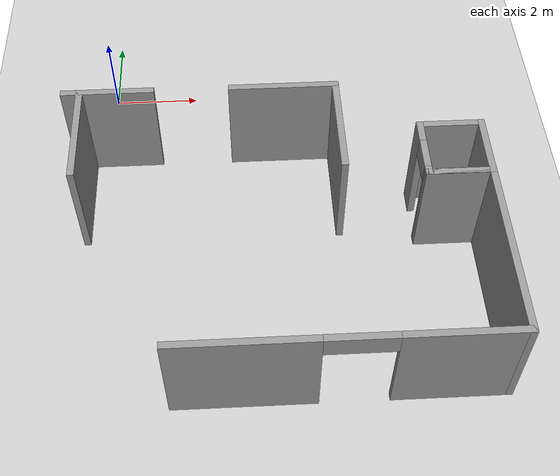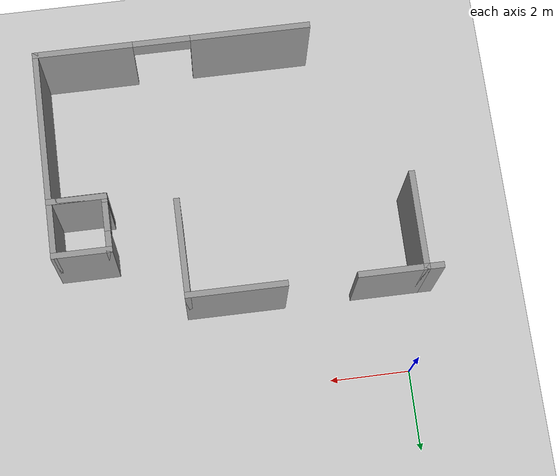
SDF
<sdf version="1.9">
 <world name="default">
  <model name="ground_plane">
   <static>true</static>
   <link name="link">
    <collision name="collision">
     <geometry><plane><normal>0 0 1</normal><size>100 100</size></plane></geometry>
     <surface><friction><ode><mu>100</mu><mu2>50</mu2></ode></friction></surface>
    </collision>
    <visual name="visual">
     <cast_shadows>false</cast_shadows>
     <geometry><plane><normal>0 0 1</normal><size>100 100</size></plane></geometry>
     <material>
      <script><uri>file://media/materials/scripts/gazebo.material</uri><name>Gazebo/Grey</name></script>
     </material>
    </visual>
   </link>
  </model>
  <model name="cma_parede_t">
   <pose>0.16403899999999999 -3.2482899999999999 0 0 0 0</pose>
   <link name="Wall_15">
    <collision name="Wall_15_Collision">
     <geometry><box><size>2.5 0.14999999999999999 2.5</size></box></geometry>
     <pose>0 0 1.25 0 0 0</pose>
    </collision>
    <visual name="Wall_15_Visual">
     <pose>0 0 1.25 0 0 0</pose>
     <geometry><box><size>2.5 0.14999999999999999 2.5</size></box></geometry>
     <material>
      <script><uri>file://media/materials/scripts/gazebo.material</uri><name>Gazebo/Grey</name></script>
      <ambient>1 1 1 1</ambient>
     </material>
    </visual>
    <pose>-0.625 0 0 0 0 1.5708</pose>
   </link>
   <link name="Wall_16">
    <collision name="Wall_16_Collision">
     <geometry><box><size>0.5 0.14999999999999999 2.5</size></box></geometry>
     <pose>0 0 1.25 0 0 0</pose>
    </collision>
    <visual name="Wall_16_Visual">
     <pose>0 0 1.25 0 0 0</pose>
     <geometry><box><size>0.5 0.14999999999999999 2.5</size></box></geometry>
     <material>
      <script><uri>file://media/materials/scripts/gazebo.material</uri><name>Gazebo/Grey</name></script>
      <ambient>1 1 1 1</ambient>
     </material>
    </visual>
    <pose>-0.80000000000000004 1.175 0 0 0 3.1415899999999999</pose>
   </link>
   <link name="Wall_18">
    <collision name="Wall_18_Collision">
     <geometry><box><size>1.75 0.14999999999999999 2.5</size></box></geometry>
     <pose>0 0 1.25 0 0 0</pose>
    </collision>
    <visual name="Wall_18_Visual">
     <pose>0 0 1.25 0 0 0</pose>
     <geometry><box><size>1.75 0.14999999999999999 2.5</size></box></geometry>
     <material>
      <script><uri>file://media/materials/scripts/gazebo.material</uri><name>Gazebo/Grey</name></script>
      <ambient>1 1 1 1</ambient>
     </material>
    </visual>
    <pose>0.17499999999999999 1.175 0 0 0 0</pose>
   </link>
   <static>true</static>
  </model>
  <model name="cma_parede_L">
   <pose>4.97628 -6.6999199999999997 0 0 0 0</pose>
   <link name="Wall_0">
    <pose>0 -1.925 0 0 0 0</pose>
    <visual name="Wall_0_Visual_0">
     <pose>-1.9850000000000001 0 1.25 0 0 0</pose>
     <geometry><box><size>3.0299999999999998 0.14999999999999999 2.5</size></box></geometry>
     <material>
      <script><uri>file://media/materials/scripts/gazebo.material</uri><name>Gazebo/Grey</name></script>
      <ambient>1 1 1 1</ambient>
     </material>
    </visual>
    <collision name="Wall_0_Collision_0">
     <geometry><box><size>3.0299999999999998 0.14999999999999999 2.5</size></box></geometry>
     <pose>-1.9850000000000001 0 1.25 0 0 0</pose>
    </collision>
    <visual name="Wall_0_Visual_1">
     <pose>2.2400000000000002 0 1.25 0 0 0</pose>
     <geometry><box><size>2.52 0.14999999999999999 2.5</size></box></geometry>
     <material>
      <script><uri>file://media/materials/scripts/gazebo.material</uri><name>Gazebo/Grey</name></script>
      <ambient>1 1 1 1</ambient>
     </material>
    </visual>
    <collision name="Wall_0_Collision_1">
     <geometry><box><size>2.52 0.14999999999999999 2.5</size></box></geometry>
     <pose>2.2400000000000002 0 1.25 0 0 0</pose>
    </collision>
    <visual name="Wall_0_Visual_2">
     <pose>0.255 0 2.25 0 0 0</pose>
     <geometry><box><size>1.45 0.14999999999999999 0.5</size></box></geometry>
     <material>
      <script><uri>file://media/materials/scripts/gazebo.material</uri><name>Gazebo/Grey</name></script>
      <ambient>1 1 1 1</ambient>
     </material>
    </visual>
    <collision name="Wall_0_Collision_2">
     <geometry><box><size>1.45 0.14999999999999999 0.5</size></box></geometry>
     <pose>0.255 0 2.25 0 0 0</pose>
    </collision>
   </link>
   <link name="Wall_1">
    <collision name="Wall_1_Collision">
     <geometry><box><size>4 0.14999999999999999 2.5</size></box></geometry>
     <pose>0 0 1.25 0 0 0</pose>
    </collision>
    <visual name="Wall_1_Visual">
     <pose>0 0 1.25 0 0 0</pose>
     <geometry><box><size>4 0.14999999999999999 2.5</size></box></geometry>
     <material>
      <script><uri>file://media/materials/scripts/gazebo.material</uri><name>Gazebo/Grey</name></script>
      <ambient>1 1 1 1</ambient>
     </material>
    </visual>
    <pose>3.4249999999999998 0 0 0 0 1.5708</pose>
   </link>
   <link name="Wall_2">
    <collision name="Wall_2_Collision">
     <geometry><box><size>1.5 0.14999999999999999 2.5</size></box></geometry>
     <pose>0 0 1.25 0 0 0</pose>
    </collision>
    <visual name="Wall_2_Visual">
     <pose>0 0 1.25 0 0 0</pose>
     <geometry><box><size>1.5 0.14999999999999999 2.5</size></box></geometry>
     <material>
      <script><uri>file://media/materials/scripts/gazebo.material</uri><name>Gazebo/Grey</name></script>
      <ambient>1 1 1 1</ambient>
     </material>
    </visual>
    <pose>2.75 1.925 0 0 0 3.1415899999999999</pose>
   </link>
   <static>true</static>
  </model>
  <model name="cma_lavabo">
   <pose>7.7229700000000001 -4.0930200000000001 0 0 0 0</pose>
   <link name="Wall_4">
    <pose>-0.67500000000000004 0 0 0 0 1.5708</pose>
    <visual name="Wall_4_Visual_0">
     <pose>-0.63500000000000001 0 1.25 0 0 0</pose>
     <geometry><box><size>0.23000000000000001 0.14999999999999999 2.5</size></box></geometry>
     <material>
      <script><uri>file://media/materials/scripts/gazebo.material</uri><name>Gazebo/Grey</name></script>
      <ambient>1 1 1 1</ambient>
     </material>
    </visual>
    <collision name="Wall_4_Collision_0">
     <geometry><box><size>0.23000000000000001 0.14999999999999999 2.5</size></box></geometry>
     <pose>-0.63500000000000001 0 1.25 0 0 0</pose>
    </collision>
    <visual name="Wall_4_Visual_1">
     <pose>0.47999999999999998 0 1.25 0 0 0</pose>
     <geometry><box><size>0.54000000000000004 0.14999999999999999 2.5</size></box></geometry>
     <material>
      <script><uri>file://media/materials/scripts/gazebo.material</uri><name>Gazebo/Grey</name></script>
      <ambient>1 1 1 1</ambient>
     </material>
    </visual>
    <collision name="Wall_4_Collision_1">
     <geometry><box><size>0.54000000000000004 0.14999999999999999 2.5</size></box></geometry>
     <pose>0.47999999999999998 0 1.25 0 0 0</pose>
    </collision>
    <visual name="Wall_4_Visual_2">
     <pose>-0.155 0 2.25 0 0 0</pose>
     <geometry><box><size>0.72999999999999998 0.14999999999999999 0.5</size></box></geometry>
     <material>
      <script><uri>file://media/materials/scripts/gazebo.material</uri><name>Gazebo/Grey</name></script>
      <ambient>1 1 1 1</ambient>
     </material>
    </visual>
    <collision name="Wall_4_Collision_2">
     <geometry><box><size>0.72999999999999998 0.14999999999999999 0.5</size></box></geometry>
     <pose>-0.155 0 2.25 0 0 0</pose>
    </collision>
   </link>
   <link name="Wall_5">
    <collision name="Wall_5_Collision">
     <geometry><box><size>1.5 0.14999999999999999 2.5</size></box></geometry>
     <pose>0 0 1.25 0 0 0</pose>
    </collision>
    <visual name="Wall_5_Visual">
     <pose>0 0 1.25 0 0 0</pose>
     <geometry><box><size>1.5 0.14999999999999999 2.5</size></box></geometry>
     <material>
      <script><uri>file://media/materials/scripts/gazebo.material</uri><name>Gazebo/Grey</name></script>
      <ambient>1 1 1 1</ambient>
     </material>
    </visual>
    <pose>0 0.67500000000000004 0 0 0 0</pose>
   </link>
   <link name="Wall_6">
    <collision name="Wall_6_Collision">
     <geometry><box><size>1.5 0.14999999999999999 2.5</size></box></geometry>
     <pose>0 0 1.25 0 0 0</pose>
    </collision>
    <visual name="Wall_6_Visual">
     <pose>0 0 1.25 0 0 0</pose>
     <geometry><box><size>1.5 0.14999999999999999 2.5</size></box></geometry>
     <material>
      <script><uri>file://media/materials/scripts/gazebo.material</uri><name>Gazebo/Grey</name></script>
      <ambient>1 1 1 1</ambient>
     </material>
    </visual>
    <pose>0.67500000000000004 0 0 0 0 -1.5708</pose>
   </link>
   <link name="Wall_7">
    <collision name="Wall_7_Collision">
     <geometry><box><size>1.5 0.14999999999999999 2.5</size></box></geometry>
     <pose>0 0 1.25 0 0 0</pose>
    </collision>
    <visual name="Wall_7_Visual">
     <pose>0 0 1.25 0 0 0</pose>
     <geometry><box><size>1.5 0.14999999999999999 2.5</size></box></geometry>
     <material>
      <script><uri>file://media/materials/scripts/gazebo.material</uri><name>Gazebo/Grey</name></script>
      <ambient>1 1 1 1</ambient>
     </material>
    </visual>
    <pose>0 -0.67500000000000004 0 0 0 3.1415899999999999</pose>
   </link>
   <static>true</static>
  </model>
  <model name="cma_L2">
   <pose>4.1371599999999997 -3.2505299999999999 0 0 0 0</pose>
   <link name="Wall_10">
    <collision name="Wall_10_Collision">
     <geometry><box><size>2.5 0.14999999999999999 2.5</size></box></geometry>
     <pose>0 0 1.25 0 0 0</pose>
    </collision>
    <visual name="Wall_10_Visual">
     <pose>0 0 1.25 0 0 0</pose>
     <geometry><box><size>2.5 0.14999999999999999 2.5</size></box></geometry>
     <material>
      <script><uri>file://media/materials/scripts/gazebo.material</uri><name>Gazebo/Grey</name></script>
      <ambient>1 1 1 1</ambient>
     </material>
    </visual>
    <pose>1.175 0 0 0 0 -1.5708</pose>
   </link>
   <link name="Wall_9">
    <collision name="Wall_9_Collision">
     <geometry><box><size>2.5 0.14999999999999999 2.5</size></box></geometry>
     <pose>0 0 1.25 0 0 0</pose>
    </collision>
    <visual name="Wall_9_Visual">
     <pose>0 0 1.25 0 0 0</pose>
     <geometry><box><size>2.5 0.14999999999999999 2.5</size></box></geometry>
     <material>
      <script><uri>file://media/materials/scripts/gazebo.material</uri><name>Gazebo/Grey</name></script>
      <ambient>1 1 1 1</ambient>
     </material>
    </visual>
    <pose>0 1.175 0 0 0 0</pose>
   </link>
   <static>true</static>
  </model>
 </world>
</sdf>
